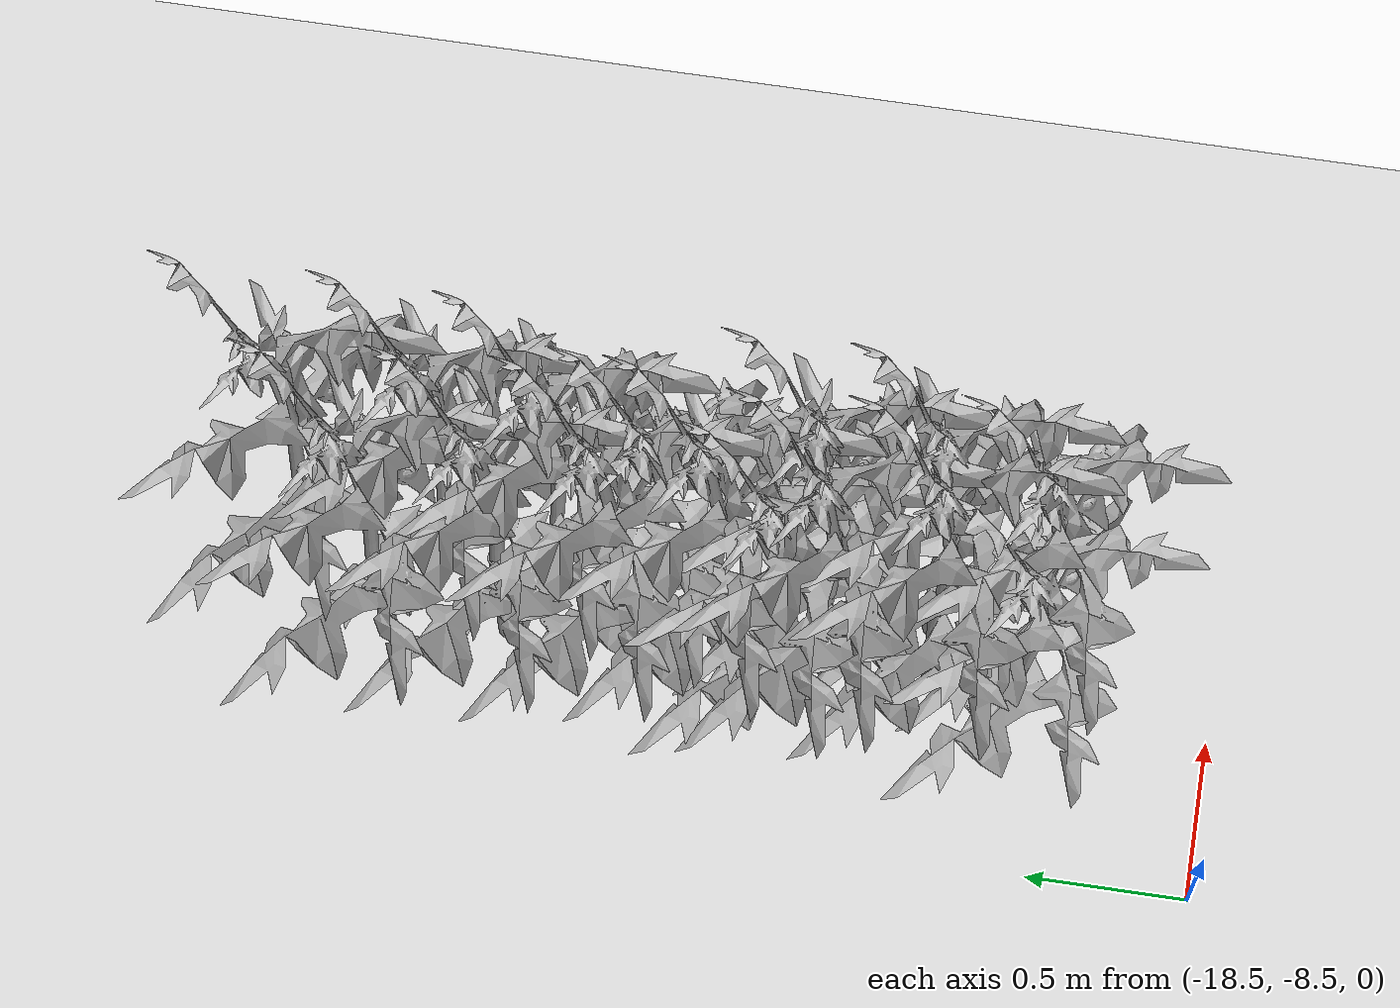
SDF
<sdf version="1.6">
 <world name="default">
  <model name="ground_plane">
   <static>1</static>
   <link name="link">
    <collision name="collision">
     <geometry><plane><normal>0 0 1</normal><size>100 100</size></plane></geometry>
     <surface>
      <contact><collide_bitmask>65535</collide_bitmask></contact>
      <friction><ode><mu>100</mu><mu2>50</mu2></ode></friction>
     </surface>
    </collision>
    <visual name="visual">
     <cast_shadows>0</cast_shadows>
     <geometry><plane><normal>0 0 1</normal><size>100 100</size></plane></geometry>
     <material>
      <script><uri>file://media/materials/scripts/gazebo.material</uri><name>Gazebo/Grey</name></script>
     </material>
    </visual>
   </link>
  </model>
  <model name="Middle_Plant_0">
   <model name="tomato_plant_big">
    <static>1</static>
    <link name="link">
     <collision name="collision">
      <geometry>
       <mesh><scale>5e-06 5e-06 6e-06</scale><uri>model://tomato_plant_big/meshes/tomato-plant.dae</uri></mesh>
      </geometry>
     </collision>
     <visual name="visual">
      <geometry>
       <mesh><scale>5e-06 5e-06 7e-06</scale><uri>model://tomato_plant_big/meshes/tomato-plant.dae</uri></mesh>
      </geometry>
     </visual>
    </link>
    <pose>0.085326 1.23023 0 0 -0 0</pose>
   </model>
   <model name="tomato_plant_big_0">
    <static>1</static>
    <link name="link">
     <collision name="collision">
      <geometry>
       <mesh><scale>5e-06 5e-06 6e-06</scale><uri>model://tomato_plant_big/meshes/tomato-plant.dae</uri></mesh>
      </geometry>
     </collision>
     <visual name="visual">
      <geometry>
       <mesh><scale>5e-06 5e-06 7e-06</scale><uri>model://tomato_plant_big/meshes/tomato-plant.dae</uri></mesh>
      </geometry>
     </visual>
    </link>
    <pose>-0.133881 0.970183 0 0 -0 0</pose>
   </model>
   <model name="tomato_plant_big_1">
    <static>1</static>
    <link name="link">
     <collision name="collision">
      <geometry>
       <mesh><scale>5e-06 5e-06 6e-06</scale><uri>model://tomato_plant_big/meshes/tomato-plant.dae</uri></mesh>
      </geometry>
     </collision>
     <visual name="visual">
      <geometry>
       <mesh><scale>5e-06 5e-06 7e-06</scale><uri>model://tomato_plant_big/meshes/tomato-plant.dae</uri></mesh>
      </geometry>
     </visual>
    </link>
    <pose>0.091162 0.792381 0 0 -0 0</pose>
   </model>
   <model name="tomato_plant_big_2">
    <static>1</static>
    <link name="link">
     <collision name="collision">
      <geometry>
       <mesh><scale>5e-06 5e-06 6e-06</scale><uri>model://tomato_plant_big/meshes/tomato-plant.dae</uri></mesh>
      </geometry>
     </collision>
     <visual name="visual">
      <geometry>
       <mesh><scale>5e-06 5e-06 7e-06</scale><uri>model://tomato_plant_big/meshes/tomato-plant.dae</uri></mesh>
      </geometry>
     </visual>
    </link>
    <pose>-0.099228 0.602587 0 0 -0 0</pose>
   </model>
   <model name="tomato_plant_big_3">
    <static>1</static>
    <link name="link">
     <collision name="collision">
      <geometry>
       <mesh><scale>5e-06 5e-06 6e-06</scale><uri>model://tomato_plant_big/meshes/tomato-plant.dae</uri></mesh>
      </geometry>
     </collision>
     <visual name="visual">
      <geometry>
       <mesh><scale>5e-06 5e-06 7e-06</scale><uri>model://tomato_plant_big/meshes/tomato-plant.dae</uri></mesh>
      </geometry>
     </visual>
    </link>
    <pose>0.083199 0.447645 0 0 -0 0</pose>
   </model>
   <model name="tomato_plant_big_4">
    <static>1</static>
    <link name="link">
     <collision name="collision">
      <geometry>
       <mesh><scale>5e-06 5e-06 6e-06</scale><uri>model://tomato_plant_big/meshes/tomato-plant.dae</uri></mesh>
      </geometry>
     </collision>
     <visual name="visual">
      <geometry>
       <mesh><scale>5e-06 5e-06 7e-06</scale><uri>model://tomato_plant_big/meshes/tomato-plant.dae</uri></mesh>
      </geometry>
     </visual>
    </link>
    <pose>-0.079499 0.263486 0 0 -0 0</pose>
   </model>
   <model name="tomato_plant_big_5">
    <static>1</static>
    <link name="link">
     <collision name="collision">
      <geometry>
       <mesh><scale>5e-06 5e-06 6e-06</scale><uri>model://tomato_plant_big/meshes/tomato-plant.dae</uri></mesh>
      </geometry>
     </collision>
     <visual name="visual">
      <geometry>
       <mesh><scale>5e-06 5e-06 7e-06</scale><uri>model://tomato_plant_big/meshes/tomato-plant.dae</uri></mesh>
      </geometry>
     </visual>
    </link>
    <pose>-0.033274 -0.040578 0 0 -0 0</pose>
   </model>
   <model name="tomato_plant_big_6">
    <static>1</static>
    <link name="link">
     <collision name="collision">
      <geometry>
       <mesh><scale>5e-06 5e-06 6e-06</scale><uri>model://tomato_plant_big/meshes/tomato-plant.dae</uri></mesh>
      </geometry>
     </collision>
     <visual name="visual">
      <geometry>
       <mesh><scale>5e-06 5e-06 7e-06</scale><uri>model://tomato_plant_big/meshes/tomato-plant.dae</uri></mesh>
      </geometry>
     </visual>
    </link>
    <pose>-0.07669 -0.382406 0 0 -0 0</pose>
   </model>
   <model name="tomato_plant_big_7">
    <static>1</static>
    <link name="link">
     <collision name="collision">
      <geometry>
       <mesh><scale>5e-06 5e-06 6e-06</scale><uri>model://tomato_plant_big/meshes/tomato-plant.dae</uri></mesh>
      </geometry>
     </collision>
     <visual name="visual">
      <geometry>
       <mesh><scale>5e-06 5e-06 7e-06</scale><uri>model://tomato_plant_big/meshes/tomato-plant.dae</uri></mesh>
      </geometry>
     </visual>
    </link>
    <pose>0.092388 -0.348189 0 0 -0 0</pose>
   </model>
   <model name="tomato_plant_big_8">
    <static>1</static>
    <link name="link">
     <collision name="collision">
      <geometry>
       <mesh><scale>5e-06 5e-06 6e-06</scale><uri>model://tomato_plant_big/meshes/tomato-plant.dae</uri></mesh>
      </geometry>
     </collision>
     <visual name="visual">
      <geometry>
       <mesh><scale>5e-06 5e-06 7e-06</scale><uri>model://tomato_plant_big/meshes/tomato-plant.dae</uri></mesh>
      </geometry>
     </visual>
    </link>
    <pose>0.099522 -0.697525 0 0 -0 0</pose>
   </model>
   <model name="tomato_plant_big_9">
    <static>1</static>
    <link name="link">
     <collision name="collision">
      <geometry>
       <mesh><scale>5e-06 5e-06 6e-06</scale><uri>model://tomato_plant_big/meshes/tomato-plant.dae</uri></mesh>
      </geometry>
     </collision>
     <visual name="visual">
      <geometry>
       <mesh><scale>5e-06 5e-06 7e-06</scale><uri>model://tomato_plant_big/meshes/tomato-plant.dae</uri></mesh>
      </geometry>
     </visual>
    </link>
    <pose>-0.050449 -0.712772 0 0 -0 0</pose>
   </model>
   <model name="tomato_plant_medium">
    <static>1</static>
    <link name="link">
     <collision name="collision">
      <geometry>
       <mesh><scale>5e-06 5e-06 6e-06</scale><uri>model://tomato_plant_medium/meshes/tomato-plant.dae</uri></mesh>
      </geometry>
     </collision>
     <visual name="visual">
      <geometry>
       <mesh><scale>5e-06 5e-06 6e-06</scale><uri>model://tomato_plant_medium/meshes/tomato-plant.dae</uri></mesh>
      </geometry>
     </visual>
    </link>
    <pose>0.078434 0.139842 0 0 -0 0</pose>
   </model>
   <model name="tomato_plant_medium_0">
    <static>1</static>
    <link name="link">
     <collision name="collision">
      <geometry>
       <mesh><scale>5e-06 5e-06 6e-06</scale><uri>model://tomato_plant_medium/meshes/tomato-plant.dae</uri></mesh>
      </geometry>
     </collision>
     <visual name="visual">
      <geometry>
       <mesh><scale>5e-06 5e-06 6e-06</scale><uri>model://tomato_plant_medium/meshes/tomato-plant.dae</uri></mesh>
      </geometry>
     </visual>
    </link>
    <pose>-0.079755 -0.244483 0 0 -0 0</pose>
   </model>
   <model name="tomato_plant_medium_1">
    <static>1</static>
    <link name="link">
     <collision name="collision">
      <geometry>
       <mesh><scale>5e-06 5e-06 6e-06</scale><uri>model://tomato_plant_medium/meshes/tomato-plant.dae</uri></mesh>
      </geometry>
     </collision>
     <visual name="visual">
      <geometry>
       <mesh><scale>5e-06 5e-06 6e-06</scale><uri>model://tomato_plant_medium/meshes/tomato-plant.dae</uri></mesh>
      </geometry>
     </visual>
    </link>
    <pose>0.106744 -1.01815 0 0 -0 0</pose>
   </model>
   <model name="tomato_plant_small">
    <static>1</static>
    <link name="link">
     <collision name="collision">
      <geometry>
       <mesh><scale>5e-06 5e-06 5e-06</scale><uri>model://tomato_plant_small/meshes/tomato-plant.dae</uri></mesh>
      </geometry>
     </collision>
     <visual name="visual">
      <geometry>
       <mesh><scale>5e-06 5e-06 5e-06</scale><uri>model://tomato_plant_small/meshes/tomato-plant.dae</uri></mesh>
      </geometry>
     </visual>
    </link>
    <pose>-0.083979 -1.00222 0 0 -0 0</pose>
   </model>
   <static>0</static>
   <pose>-17.8416 -6.93507 0 0 -0 0</pose>
  </model>
 </world>
</sdf>
